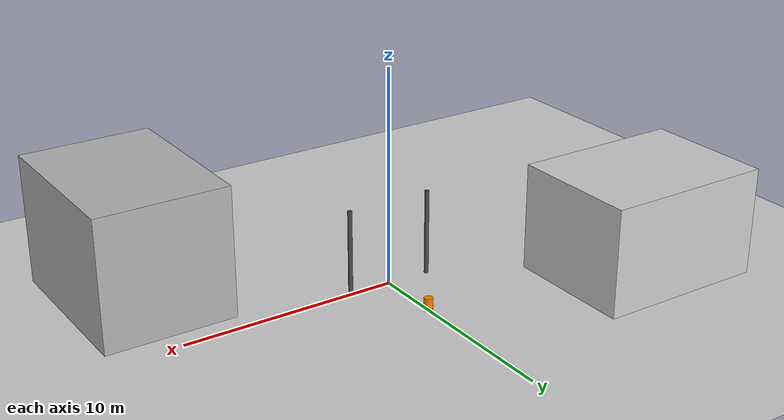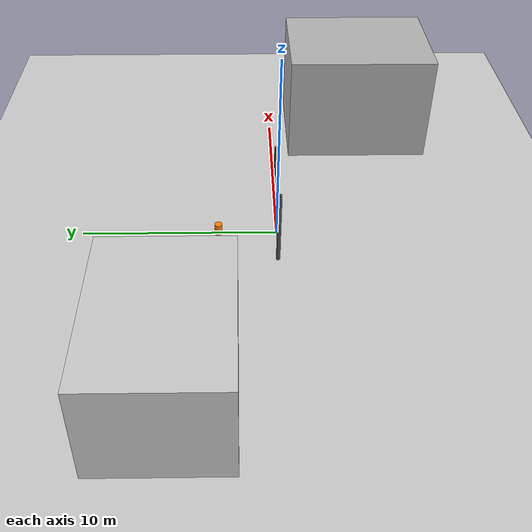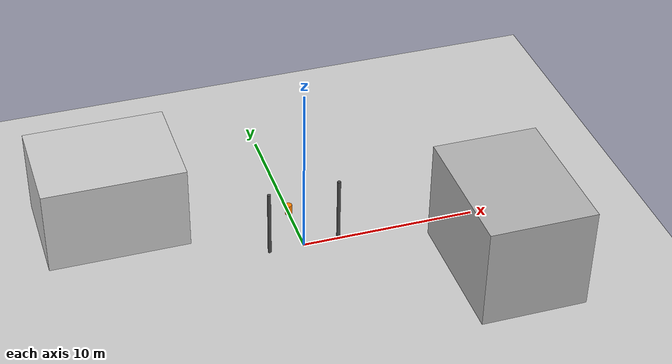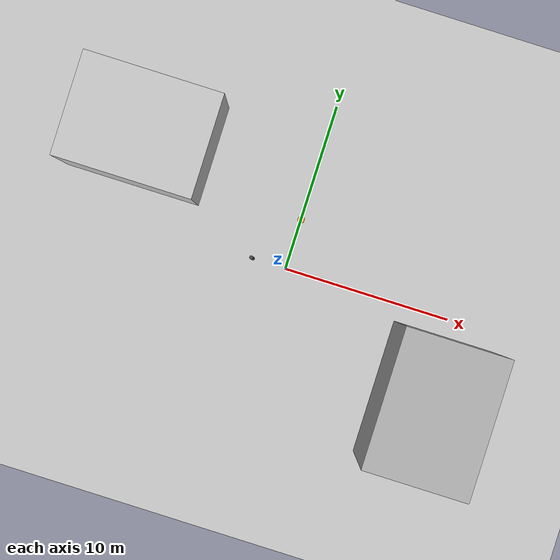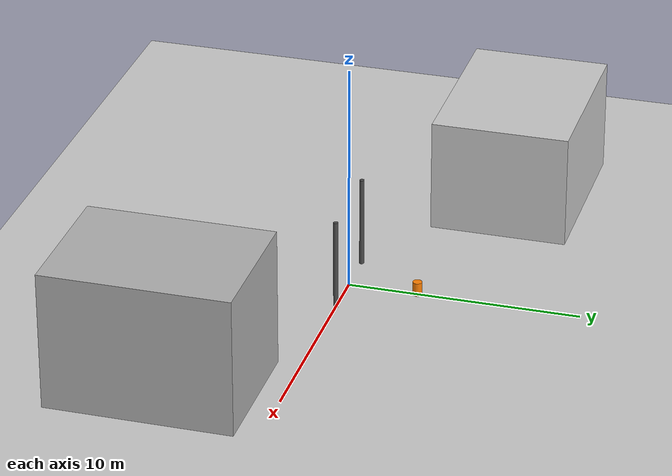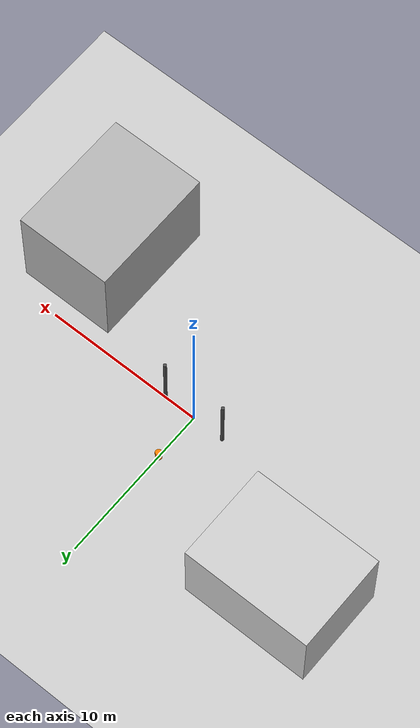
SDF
<?xml version="1.0" ?>
<sdf version="1.6">
  <world name="urban_street">
    <include>
      <uri>model://sun</uri>
    </include>
    <include>
      <uri>model://ground_plane</uri>
    </include>

    <!-- Buildings -->
    <model name="building1">
      <static>true</static>
      <pose>-10 5 2.5 0 0 0</pose>
      <link name="link">
        <collision name="collision">
          <geometry>
            <box>
              <size>8 6 5</size>
            </box>
          </geometry>
        </collision>
        <visual name="visual">
          <geometry>
            <box>
              <size>8 6 5</size>
            </box>
          </geometry>
          <material>
            <ambient>0.8 0.8 0.8 1</ambient>
          </material>
        </visual>
      </link>
    </model>

    <model name="building2">
      <static>true</static>
      <pose>10 -5 3 0 0 0</pose>
      <link name="link">
        <collision name="collision">
          <geometry>
            <box>
              <size>6 8 6</size>
            </box>
          </geometry>
        </collision>
        <visual name="visual">
          <geometry>
            <box>
              <size>6 8 6</size>
            </box>
          </geometry>
          <material>
            <ambient>0.7 0.7 0.7 1</ambient>
          </material>
        </visual>
      </link>
    </model>

    <!-- Street lights -->
    <model name="streetlight1">
      <static>true</static>
      <pose>-2 0 2 0 0 0</pose>
      <link name="link">
        <collision name="collision">
          <geometry>
            <cylinder>
              <radius>0.1</radius>
              <length>4</length>
            </cylinder>
          </geometry>
        </collision>
        <visual name="visual">
          <geometry>
            <cylinder>
              <radius>0.1</radius>
              <length>4</length>
            </cylinder>
          </geometry>
          <material>
            <ambient>0.3 0.3 0.3 1</ambient>
          </material>
        </visual>
      </link>
    </model>

    <model name="streetlight2">
      <static>true</static>
      <pose>2 0 2 0 0 0</pose>
      <link name="link">
        <collision name="collision">
          <geometry>
            <cylinder>
              <radius>0.1</radius>
              <length>4</length>
            </cylinder>
          </geometry>
        </collision>
        <visual name="visual">
          <geometry>
            <cylinder>
              <radius>0.1</radius>
              <length>4</length>
            </cylinder>
          </geometry>
          <material>
            <ambient>0.3 0.3 0.3 1</ambient>
          </material>
        </visual>
      </link>
    </model>

    <!-- Traffic cone -->
    <model name="traffic_cone">
      <static>true</static>
      <pose>0 3 0.3 0 0 0</pose>
      <link name="link">
        <collision name="collision">
          <geometry>
            <cylinder>
              <radius>0.2</radius>
              <length>0.6</length>
            </cylinder>
          </geometry>
        </collision>
        <visual name="visual">
          <geometry>
            <cylinder>
              <radius>0.2</radius>
              <length>0.6</length>
            </cylinder>
          </geometry>
          <material>
            <ambient>1 0.5 0 1</ambient>
          </material>
        </visual>
      </link>
    </model>

  </world>
</sdf>
